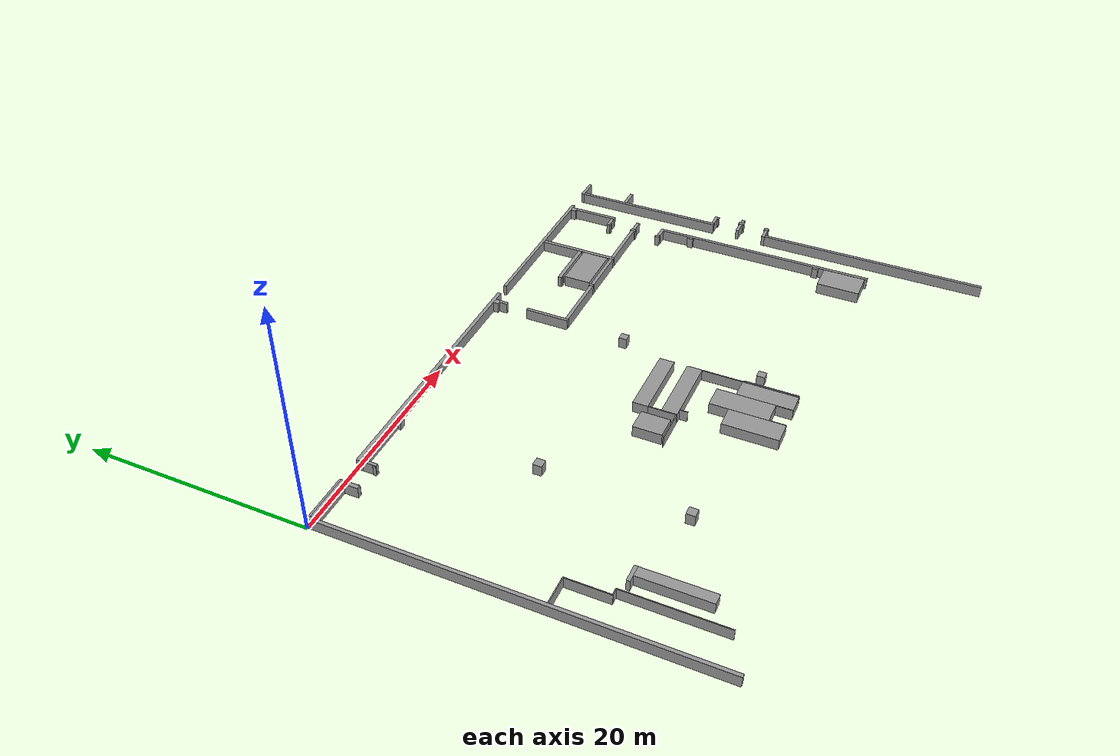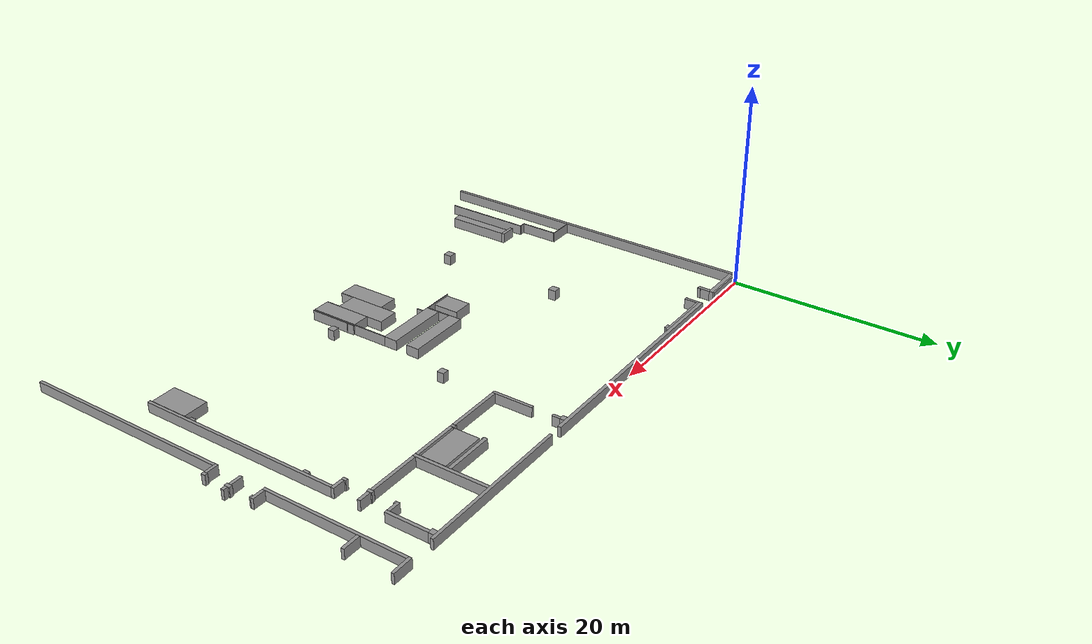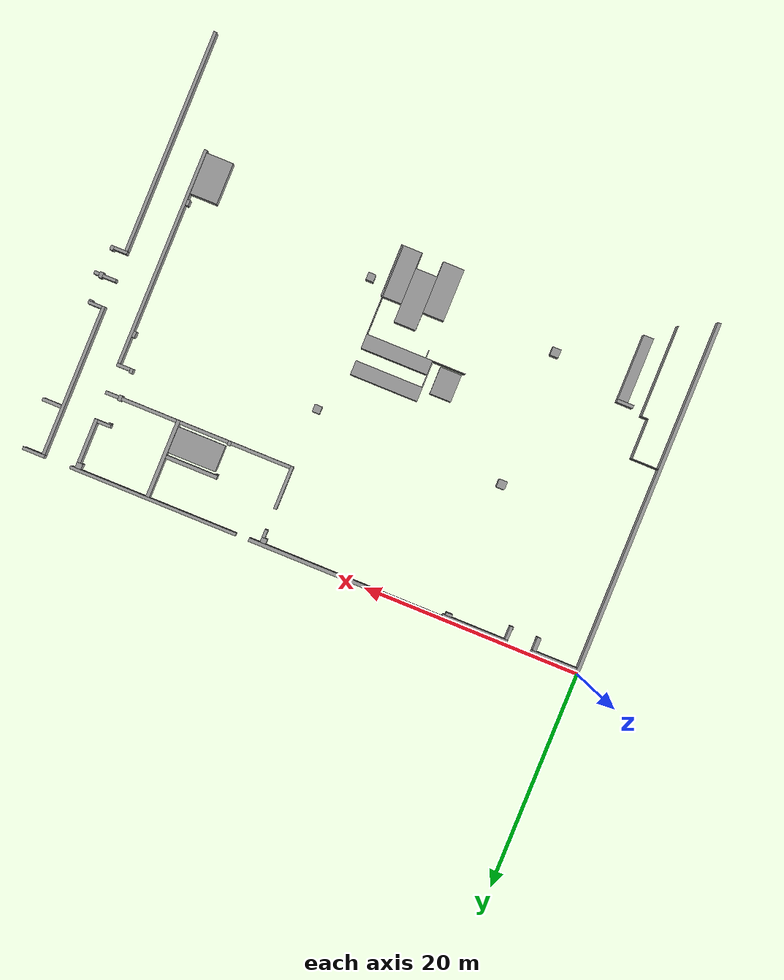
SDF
<sdf version="1.4">
 <model name="AdlerErfurtShopDownstairs">
  <static>1</static>
  <link name="Wall_0">
   <collision name="Wall_0_Collision">
    <geometry><box><size>4.51915 0.15319 1.00000</size></box></geometry>
    <pose>2.28511 -0.07660 0.50000 0 0 0.00000</pose>
   </collision>
   <visual name="Wall_0_Visual">
    <geometry><box><size>4.51915 0.15319 1.00000</size></box></geometry>
    <material>
     <script><uri>file://media/materials/scripts/gazebo.material</uri><name>Gazebo/Grey</name></script>
    </material>
    <pose>2.28511 -0.07660 0.50000 0 0 0.00000</pose>
   </visual>
  </link>
  <link name="Wall_1">
   <collision name="Wall_1_Collision">
    <geometry><box><size>24.07660 0.33191 1.00000</size></box></geometry>
    <pose>18.85532 -0.16596 0.50000 0 0 0.00000</pose>
   </collision>
   <visual name="Wall_1_Visual">
    <geometry><box><size>24.07660 0.33191 1.00000</size></box></geometry>
    <material>
     <script><uri>file://media/materials/scripts/gazebo.material</uri><name>Gazebo/Grey</name></script>
    </material>
    <pose>18.85532 -0.16596 0.50000 0 0 0.00000</pose>
   </visual>
  </link>
  <link name="Wall_2">
   <collision name="Wall_2_Collision">
    <geometry><box><size>15.49787 0.28085 1.00000</size></box></geometry>
    <pose>39.84255 -0.14043 0.50000 0 0 0.00000</pose>
   </collision>
   <visual name="Wall_2_Visual">
    <geometry><box><size>15.49787 0.28085 1.00000</size></box></geometry>
    <material>
     <script><uri>file://media/materials/scripts/gazebo.material</uri><name>Gazebo/Grey</name></script>
    </material>
    <pose>39.84255 -0.14043 0.50000 0 0 0.00000</pose>
   </visual>
  </link>
  <link name="Wall_3">
   <collision name="Wall_3_Collision">
    <geometry><box><size>2.01702 0.28085 1.00000</size></box></geometry>
    <pose>51.00000 -0.14043 0.50000 0 0 0.00000</pose>
   </collision>
   <visual name="Wall_3_Visual">
    <geometry><box><size>2.01702 0.28085 1.00000</size></box></geometry>
    <material>
     <script><uri>file://media/materials/scripts/gazebo.material</uri><name>Gazebo/Grey</name></script>
    </material>
    <pose>51.00000 -0.14043 0.50000 0 0 0.00000</pose>
   </visual>
  </link>
  <link name="Wall_4">
   <collision name="Wall_4_Collision">
    <geometry><box><size>0.30638 32.73191 1.00000</size></box></geometry>
    <pose>0.17872 -16.51915 0.50000 0 0 0.00000</pose>
   </collision>
   <visual name="Wall_4_Visual">
    <geometry><box><size>0.30638 32.73191 1.00000</size></box></geometry>
    <material>
     <script><uri>file://media/materials/scripts/gazebo.material</uri><name>Gazebo/Grey</name></script>
    </material>
    <pose>0.17872 -16.51915 0.50000 0 0 0.00000</pose>
   </visual>
  </link>
  <link name="Wall_5">
   <collision name="Wall_5_Collision">
    <geometry><box><size>4.18723 0.40851 1.00000</size></box></geometry>
    <pose>2.45106 -0.35745 0.50000 0 0 0.00000</pose>
   </collision>
   <visual name="Wall_5_Visual">
    <geometry><box><size>4.18723 0.40851 1.00000</size></box></geometry>
    <material>
     <script><uri>file://media/materials/scripts/gazebo.material</uri><name>Gazebo/Grey</name></script>
    </material>
    <pose>2.45106 -0.35745 0.50000 0 0 0.00000</pose>
   </visual>
  </link>
  <link name="Wall_6">
   <collision name="Wall_6_Collision">
    <geometry><box><size>0.02553 0.30638 1.00000</size></box></geometry>
    <pose>0.34468 -0.40851 0.50000 0 0 0.00000</pose>
   </collision>
   <visual name="Wall_6_Visual">
    <geometry><box><size>0.02553 0.30638 1.00000</size></box></geometry>
    <material>
     <script><uri>file://media/materials/scripts/gazebo.material</uri><name>Gazebo/Grey</name></script>
    </material>
    <pose>0.34468 -0.40851 0.50000 0 0 0.00000</pose>
   </visual>
  </link>
  <link name="Wall_7">
   <collision name="Wall_7_Collision">
    <geometry><box><size>0.33191 7.17447 1.00000</size></box></geometry>
    <pose>40.40426 -3.86809 0.50000 0 0 0.00000</pose>
   </collision>
   <visual name="Wall_7_Visual">
    <geometry><box><size>0.33191 7.17447 1.00000</size></box></geometry>
    <material>
     <script><uri>file://media/materials/scripts/gazebo.material</uri><name>Gazebo/Grey</name></script>
    </material>
    <pose>40.40426 -3.86809 0.50000 0 0 0.00000</pose>
   </visual>
  </link>
  <link name="Wall_8">
   <collision name="Wall_8_Collision">
    <geometry><box><size>0.53617 0.51064 1.00000</size></box></geometry>
    <pose>46.91489 -0.53617 0.50000 0 0 0.00000</pose>
   </collision>
   <visual name="Wall_8_Visual">
    <geometry><box><size>0.53617 0.51064 1.00000</size></box></geometry>
    <material>
     <script><uri>file://media/materials/scripts/gazebo.material</uri><name>Gazebo/Grey</name></script>
    </material>
    <pose>46.91489 -0.53617 0.50000 0 0 0.00000</pose>
   </visual>
  </link>
  <link name="Wall_9">
   <collision name="Wall_9_Collision">
    <geometry><box><size>0.28085 13.83830 1.00000</size></box></geometry>
    <pose>50.13191 -7.20000 0.50000 0 0 0.00000</pose>
   </collision>
   <visual name="Wall_9_Visual">
    <geometry><box><size>0.28085 13.83830 1.00000</size></box></geometry>
    <material>
     <script><uri>file://media/materials/scripts/gazebo.material</uri><name>Gazebo/Grey</name></script>
    </material>
    <pose>50.13191 -7.20000 0.50000 0 0 0.00000</pose>
   </visual>
  </link>
  <link name="Wall_10">
   <collision name="Wall_10_Collision">
    <geometry><box><size>6.07660 0.20426 1.00000</size></box></geometry>
    <pose>9.85532 -0.43404 0.50000 0 0 0.00000</pose>
   </collision>
   <visual name="Wall_10_Visual">
    <geometry><box><size>6.07660 0.20426 1.00000</size></box></geometry>
    <material>
     <script><uri>file://media/materials/scripts/gazebo.material</uri><name>Gazebo/Grey</name></script>
    </material>
    <pose>9.85532 -0.43404 0.50000 0 0 0.00000</pose>
   </visual>
  </link>
  <link name="Wall_11">
   <collision name="Wall_11_Collision">
    <geometry><box><size>0.53617 0.45957 1.00000</size></box></geometry>
    <pose>29.65532 -0.56170 0.50000 0 0 0.00000</pose>
   </collision>
   <visual name="Wall_11_Visual">
    <geometry><box><size>0.53617 0.45957 1.00000</size></box></geometry>
    <material>
     <script><uri>file://media/materials/scripts/gazebo.material</uri><name>Gazebo/Grey</name></script>
    </material>
    <pose>29.65532 -0.56170 0.50000 0 0 0.00000</pose>
   </visual>
  </link>
  <link name="Wall_12">
   <collision name="Wall_12_Collision">
    <geometry><box><size>0.28085 1.22553 1.00000</size></box></geometry>
    <pose>6.95745 -1.14894 0.50000 0 0 0.00000</pose>
   </collision>
   <visual name="Wall_12_Visual">
    <geometry><box><size>0.28085 1.22553 1.00000</size></box></geometry>
    <material>
     <script><uri>file://media/materials/scripts/gazebo.material</uri><name>Gazebo/Grey</name></script>
    </material>
    <pose>6.95745 -1.14894 0.50000 0 0 0.00000</pose>
   </visual>
  </link>
  <link name="Wall_13">
   <collision name="Wall_13_Collision">
    <geometry><box><size>0.58723 0.25532 1.00000</size></box></geometry>
    <pose>12.37021 -0.66383 0.50000 0 0 0.00000</pose>
   </collision>
   <visual name="Wall_13_Visual">
    <geometry><box><size>0.58723 0.25532 1.00000</size></box></geometry>
    <material>
     <script><uri>file://media/materials/scripts/gazebo.material</uri><name>Gazebo/Grey</name></script>
    </material>
    <pose>12.37021 -0.66383 0.50000 0 0 0.00000</pose>
   </visual>
  </link>
  <link name="Wall_14">
   <collision name="Wall_14_Collision">
    <geometry><box><size>0.35745 1.20000 1.00000</size></box></geometry>
    <pose>4.36596 -1.16170 0.50000 0 0 0.00000</pose>
   </collision>
   <visual name="Wall_14_Visual">
    <geometry><box><size>0.35745 1.20000 1.00000</size></box></geometry>
    <material>
     <script><uri>file://media/materials/scripts/gazebo.material</uri><name>Gazebo/Grey</name></script>
    </material>
    <pose>4.36596 -1.16170 0.50000 0 0 0.00000</pose>
   </visual>
  </link>
  <link name="Wall_15">
   <collision name="Wall_15_Collision">
    <geometry><box><size>0.28085 0.74043 1.00000</size></box></geometry>
    <pose>29.78298 -1.16170 0.50000 0 0 0.00000</pose>
   </collision>
   <visual name="Wall_15_Visual">
    <geometry><box><size>0.28085 0.74043 1.00000</size></box></geometry>
    <material>
     <script><uri>file://media/materials/scripts/gazebo.material</uri><name>Gazebo/Grey</name></script>
    </material>
    <pose>29.78298 -1.16170 0.50000 0 0 0.00000</pose>
   </visual>
  </link>
  <link name="Wall_16">
   <collision name="Wall_16_Collision">
    <geometry><box><size>0.30638 4.05957 1.00000</size></box></geometry>
    <pose>47.02979 -2.82128 0.50000 0 0 0.00000</pose>
   </collision>
   <visual name="Wall_16_Visual">
    <geometry><box><size>0.30638 4.05957 1.00000</size></box></geometry>
    <material>
     <script><uri>file://media/materials/scripts/gazebo.material</uri><name>Gazebo/Grey</name></script>
    </material>
    <pose>47.02979 -2.82128 0.50000 0 0 0.00000</pose>
   </visual>
  </link>
  <link name="Wall_17">
   <collision name="Wall_17_Collision">
    <geometry><box><size>0.02553 0.30638 1.00000</size></box></geometry>
    <pose>4.55745 -1.60851 0.50000 0 0 0.00000</pose>
   </collision>
   <visual name="Wall_17_Visual">
    <geometry><box><size>0.02553 0.30638 1.00000</size></box></geometry>
    <material>
     <script><uri>file://media/materials/scripts/gazebo.material</uri><name>Gazebo/Grey</name></script>
    </material>
    <pose>4.55745 -1.60851 0.50000 0 0 0.00000</pose>
   </visual>
  </link>
  <link name="Wall_18">
   <collision name="Wall_18_Collision">
    <geometry><box><size>0.05106 0.28085 1.00000</size></box></geometry>
    <pose>6.79149 -1.62128 0.50000 0 0 0.00000</pose>
   </collision>
   <visual name="Wall_18_Visual">
    <geometry><box><size>0.05106 0.28085 1.00000</size></box></geometry>
    <material>
     <script><uri>file://media/materials/scripts/gazebo.material</uri><name>Gazebo/Grey</name></script>
    </material>
    <pose>6.79149 -1.62128 0.50000 0 0 0.00000</pose>
   </visual>
  </link>
  <link name="Wall_19">
   <collision name="Wall_19_Collision">
    <geometry><box><size>0.28085 3.98298 1.00000</size></box></geometry>
    <pose>29.78298 -5.46383 0.50000 0 0 0.00000</pose>
   </collision>
   <visual name="Wall_19_Visual">
    <geometry><box><size>0.28085 3.98298 1.00000</size></box></geometry>
    <material>
     <script><uri>file://media/materials/scripts/gazebo.material</uri><name>Gazebo/Grey</name></script>
    </material>
    <pose>29.78298 -5.46383 0.50000 0 0 0.00000</pose>
   </visual>
  </link>
  <link name="Wall_20">
   <collision name="Wall_20_Collision">
    <geometry><box><size>4.77447 0.33191 1.00000</size></box></geometry>
    <pose>37.85106 -4.09787 0.50000 0 0 0.00000</pose>
   </collision>
   <visual name="Wall_20_Visual">
    <geometry><box><size>4.77447 0.33191 1.00000</size></box></geometry>
    <material>
     <script><uri>file://media/materials/scripts/gazebo.material</uri><name>Gazebo/Grey</name></script>
    </material>
    <pose>37.85106 -4.09787 0.50000 0 0 0.00000</pose>
   </visual>
  </link>
  <link name="Wall_21">
   <collision name="Wall_21_Collision">
    <geometry><box><size>0.28085 0.10213 1.00000</size></box></geometry>
    <pose>35.60426 -4.31489 0.50000 0 0 0.00000</pose>
   </collision>
   <visual name="Wall_21_Visual">
    <geometry><box><size>0.28085 0.10213 1.00000</size></box></geometry>
    <material>
     <script><uri>file://media/materials/scripts/gazebo.material</uri><name>Gazebo/Grey</name></script>
    </material>
    <pose>35.60426 -4.31489 0.50000 0 0 0.00000</pose>
   </visual>
  </link>
  <link name="Wall_22">
   <collision name="Wall_22_Collision">
    <geometry><box><size>4.41702 2.42553 1.00000</size></box></geometry>
    <pose>38.00426 -5.70638 0.50000 0 0 0.00000</pose>
   </collision>
   <visual name="Wall_22_Visual">
    <geometry><box><size>4.41702 2.42553 1.00000</size></box></geometry>
    <material>
     <script><uri>file://media/materials/scripts/gazebo.material</uri><name>Gazebo/Grey</name></script>
    </material>
    <pose>38.00426 -5.70638 0.50000 0 0 0.00000</pose>
   </visual>
  </link>
  <link name="Wall_23">
   <collision name="Wall_23_Collision">
    <geometry><box><size>1.73617 0.30638 1.00000</size></box></geometry>
    <pose>51.14043 -4.69787 0.50000 0 0 0.00000</pose>
   </collision>
   <visual name="Wall_23_Visual">
    <geometry><box><size>1.73617 0.30638 1.00000</size></box></geometry>
    <material>
     <script><uri>file://media/materials/scripts/gazebo.material</uri><name>Gazebo/Grey</name></script>
    </material>
    <pose>51.14043 -4.69787 0.50000 0 0 0.00000</pose>
   </visual>
  </link>
  <link name="Wall_24">
   <collision name="Wall_24_Collision">
    <geometry><box><size>1.20000 0.28085 1.00000</size></box></geometry>
    <pose>46.27660 -4.71064 0.50000 0 0 0.00000</pose>
   </collision>
   <visual name="Wall_24_Visual">
    <geometry><box><size>1.20000 0.28085 1.00000</size></box></geometry>
    <material>
     <script><uri>file://media/materials/scripts/gazebo.material</uri><name>Gazebo/Grey</name></script>
    </material>
    <pose>46.27660 -4.71064 0.50000 0 0 0.00000</pose>
   </visual>
  </link>
  <link name="Wall_25">
   <collision name="Wall_25_Collision">
    <geometry><box><size>0.28085 0.12766 1.00000</size></box></geometry>
    <pose>45.81702 -4.91489 0.50000 0 0 0.00000</pose>
   </collision>
   <visual name="Wall_25_Visual">
    <geometry><box><size>0.28085 0.12766 1.00000</size></box></geometry>
    <material>
     <script><uri>file://media/materials/scripts/gazebo.material</uri><name>Gazebo/Grey</name></script>
    </material>
    <pose>45.81702 -4.91489 0.50000 0 0 0.00000</pose>
   </visual>
  </link>
  <link name="Wall_26">
   <collision name="Wall_26_Collision">
    <geometry><box><size>0.30638 0.40851 1.00000</size></box></geometry>
    <pose>35.59149 -7.25106 0.50000 0 0 0.00000</pose>
   </collision>
   <visual name="Wall_26_Visual">
    <geometry><box><size>0.30638 0.40851 1.00000</size></box></geometry>
    <material>
     <script><uri>file://media/materials/scripts/gazebo.material</uri><name>Gazebo/Grey</name></script>
    </material>
    <pose>35.59149 -7.25106 0.50000 0 0 0.00000</pose>
   </visual>
  </link>
  <link name="Wall_27">
   <collision name="Wall_27_Collision">
    <geometry><box><size>0.30638 0.51064 1.00000</size></box></geometry>
    <pose>45.82979 -7.30213 0.50000 0 0 0.00000</pose>
   </collision>
   <visual name="Wall_27_Visual">
    <geometry><box><size>0.30638 0.51064 1.00000</size></box></geometry>
    <material>
     <script><uri>file://media/materials/scripts/gazebo.material</uri><name>Gazebo/Grey</name></script>
    </material>
    <pose>45.82979 -7.30213 0.50000 0 0 0.00000</pose>
   </visual>
  </link>
  <link name="Wall_28">
   <collision name="Wall_28_Collision">
    <geometry><box><size>5.51489 0.30638 1.00000</size></box></geometry>
    <pose>32.68085 -7.30213 0.50000 0 0 0.00000</pose>
   </collision>
   <visual name="Wall_28_Visual">
    <geometry><box><size>5.51489 0.30638 1.00000</size></box></geometry>
    <material>
     <script><uri>file://media/materials/scripts/gazebo.material</uri><name>Gazebo/Grey</name></script>
    </material>
    <pose>32.68085 -7.30213 0.50000 0 0 0.00000</pose>
   </visual>
  </link>
  <link name="Wall_29">
   <collision name="Wall_29_Collision">
    <geometry><box><size>4.49362 0.30638 1.00000</size></box></geometry>
    <pose>37.99149 -7.30213 0.50000 0 0 0.00000</pose>
   </collision>
   <visual name="Wall_29_Visual">
    <geometry><box><size>4.49362 0.30638 1.00000</size></box></geometry>
    <material>
     <script><uri>file://media/materials/scripts/gazebo.material</uri><name>Gazebo/Grey</name></script>
    </material>
    <pose>37.99149 -7.30213 0.50000 0 0 0.00000</pose>
   </visual>
  </link>
  <link name="Wall_30">
   <collision name="Wall_30_Collision">
    <geometry><box><size>5.10638 0.30638 1.00000</size></box></geometry>
    <pose>43.12340 -7.30213 0.50000 0 0 0.00000</pose>
   </collision>
   <visual name="Wall_30_Visual">
    <geometry><box><size>5.10638 0.30638 1.00000</size></box></geometry>
    <material>
     <script><uri>file://media/materials/scripts/gazebo.material</uri><name>Gazebo/Grey</name></script>
    </material>
    <pose>43.12340 -7.30213 0.50000 0 0 0.00000</pose>
   </visual>
  </link>
  <link name="Wall_31">
   <collision name="Wall_31_Collision">
    <geometry><box><size>1.20000 0.30638 1.00000</size></box></geometry>
    <pose>46.58298 -7.30213 0.50000 0 0 0.00000</pose>
   </collision>
   <visual name="Wall_31_Visual">
    <geometry><box><size>1.20000 0.30638 1.00000</size></box></geometry>
    <material>
     <script><uri>file://media/materials/scripts/gazebo.material</uri><name>Gazebo/Grey</name></script>
    </material>
    <pose>46.58298 -7.30213 0.50000 0 0 0.00000</pose>
   </visual>
  </link>
  <link name="Wall_32">
   <collision name="Wall_32_Collision">
    <geometry><box><size>0.28085 0.43404 1.00000</size></box></geometry>
    <pose>45.81702 -9.84255 0.50000 0 0 0.00000</pose>
   </collision>
   <visual name="Wall_32_Visual">
    <geometry><box><size>0.28085 0.43404 1.00000</size></box></geometry>
    <material>
     <script><uri>file://media/materials/scripts/gazebo.material</uri><name>Gazebo/Grey</name></script>
    </material>
    <pose>45.81702 -9.84255 0.50000 0 0 0.00000</pose>
   </visual>
  </link>
  <link name="Wall_33">
   <collision name="Wall_33_Collision">
    <geometry><box><size>1.22553 0.30638 1.00000</size></box></geometry>
    <pose>46.57021 -9.90638 0.50000 0 0 0.00000</pose>
   </collision>
   <visual name="Wall_33_Visual">
    <geometry><box><size>1.22553 0.30638 1.00000</size></box></geometry>
    <material>
     <script><uri>file://media/materials/scripts/gazebo.material</uri><name>Gazebo/Grey</name></script>
    </material>
    <pose>46.57021 -9.90638 0.50000 0 0 0.00000</pose>
   </visual>
  </link>
  <link name="Wall_34">
   <collision name="Wall_34_Collision">
    <geometry><box><size>0.28085 19.94043 1.00000</size></box></geometry>
    <pose>47.04255 -20.02979 0.50000 0 0 0.00000</pose>
   </collision>
   <visual name="Wall_34_Visual">
    <geometry><box><size>0.28085 19.94043 1.00000</size></box></geometry>
    <material>
     <script><uri>file://media/materials/scripts/gazebo.material</uri><name>Gazebo/Grey</name></script>
    </material>
    <pose>47.04255 -20.02979 0.50000 0 0 0.00000</pose>
   </visual>
  </link>
  <link name="Wall_35">
   <collision name="Wall_35_Collision">
    <geometry><box><size>0.76596 0.76596 1.00000</size></box></geometry>
    <pose>12.38298 -12.84255 0.50000 0 0 0.00000</pose>
   </collision>
   <visual name="Wall_35_Visual">
    <geometry><box><size>0.76596 0.76596 1.00000</size></box></geometry>
    <material>
     <script><uri>file://media/materials/scripts/gazebo.material</uri><name>Gazebo/Grey</name></script>
    </material>
    <pose>12.38298 -12.84255 0.50000 0 0 0.00000</pose>
   </visual>
  </link>
  <link name="Wall_36">
   <collision name="Wall_36_Collision">
    <geometry><box><size>0.68936 0.68936 1.00000</size></box></geometry>
    <pose>29.65532 -12.85532 0.50000 0 0 0.00000</pose>
   </collision>
   <visual name="Wall_36_Visual">
    <geometry><box><size>0.68936 0.68936 1.00000</size></box></geometry>
    <material>
     <script><uri>file://media/materials/scripts/gazebo.material</uri><name>Gazebo/Grey</name></script>
    </material>
    <pose>29.65532 -12.85532 0.50000 0 0 0.00000</pose>
   </visual>
  </link>
  <link name="Wall_37">
   <collision name="Wall_37_Collision">
    <geometry><box><size>0.25532 0.56170 1.00000</size></box></geometry>
    <pose>46.77447 -12.86809 0.50000 0 0 0.00000</pose>
   </collision>
   <visual name="Wall_37_Visual">
    <geometry><box><size>0.25532 0.56170 1.00000</size></box></geometry>
    <material>
     <script><uri>file://media/materials/scripts/gazebo.material</uri><name>Gazebo/Grey</name></script>
    </material>
    <pose>46.77447 -12.86809 0.50000 0 0 0.00000</pose>
   </visual>
  </link>
  <link name="Wall_38">
   <collision name="Wall_38_Collision">
    <geometry><box><size>1.25106 0.28085 1.00000</size></box></geometry>
    <pose>50.89787 -13.97872 0.50000 0 0 0.00000</pose>
   </collision>
   <visual name="Wall_38_Visual">
    <geometry><box><size>1.25106 0.28085 1.00000</size></box></geometry>
    <material>
     <script><uri>file://media/materials/scripts/gazebo.material</uri><name>Gazebo/Grey</name></script>
    </material>
    <pose>50.89787 -13.97872 0.50000 0 0 0.00000</pose>
   </visual>
  </link>
  <link name="Wall_39">
   <collision name="Wall_39_Collision">
    <geometry><box><size>0.33191 0.12766 1.00000</size></box></geometry>
    <pose>51.35745 -14.18298 0.50000 0 0 0.00000</pose>
   </collision>
   <visual name="Wall_39_Visual">
    <geometry><box><size>0.33191 0.12766 1.00000</size></box></geometry>
    <material>
     <script><uri>file://media/materials/scripts/gazebo.material</uri><name>Gazebo/Grey</name></script>
    </material>
    <pose>51.35745 -14.18298 0.50000 0 0 0.00000</pose>
   </visual>
  </link>
  <link name="Wall_40">
   <collision name="Wall_40_Collision">
    <geometry><box><size>0.33191 0.53617 1.00000</size></box></geometry>
    <pose>51.38298 -16.55745 0.50000 0 0 0.00000</pose>
   </collision>
   <visual name="Wall_40_Visual">
    <geometry><box><size>0.33191 0.53617 1.00000</size></box></geometry>
    <material>
     <script><uri>file://media/materials/scripts/gazebo.material</uri><name>Gazebo/Grey</name></script>
    </material>
    <pose>51.38298 -16.55745 0.50000 0 0 0.00000</pose>
   </visual>
  </link>
  <link name="Wall_41">
   <collision name="Wall_41_Collision">
    <geometry><box><size>1.22553 0.28085 1.00000</size></box></geometry>
    <pose>50.60426 -16.55745 0.50000 0 0 0.00000</pose>
   </collision>
   <visual name="Wall_41_Visual">
    <geometry><box><size>1.22553 0.28085 1.00000</size></box></geometry>
    <material>
     <script><uri>file://media/materials/scripts/gazebo.material</uri><name>Gazebo/Grey</name></script>
    </material>
    <pose>50.60426 -16.55745 0.50000 0 0 0.00000</pose>
   </visual>
  </link>
  <link name="Wall_42">
   <collision name="Wall_42_Collision">
    <geometry><box><size>0.45957 0.30638 1.00000</size></box></geometry>
    <pose>51.77872 -16.57021 0.50000 0 0 0.00000</pose>
   </collision>
   <visual name="Wall_42_Visual">
    <geometry><box><size>0.45957 0.30638 1.00000</size></box></geometry>
    <material>
     <script><uri>file://media/materials/scripts/gazebo.material</uri><name>Gazebo/Grey</name></script>
    </material>
    <pose>51.77872 -16.57021 0.50000 0 0 0.00000</pose>
   </visual>
  </link>
  <link name="Wall_43">
   <collision name="Wall_43_Collision">
    <geometry><box><size>6.22979 1.30213 1.00000</size></box></geometry>
    <pose>25.02128 -17.37447 0.50000 0 0 0.00000</pose>
   </collision>
   <visual name="Wall_43_Visual">
    <geometry><box><size>6.22979 1.30213 1.00000</size></box></geometry>
    <material>
     <script><uri>file://media/materials/scripts/gazebo.material</uri><name>Gazebo/Grey</name></script>
    </material>
    <pose>25.02128 -17.37447 0.50000 0 0 0.00000</pose>
   </visual>
  </link>
  <link name="Wall_44">
   <collision name="Wall_44_Collision">
    <geometry><box><size>1.96596 2.50213 1.00000</size></box></geometry>
    <pose>20.15745 -19.02128 0.50000 0 0 0.00000</pose>
   </collision>
   <visual name="Wall_44_Visual">
    <geometry><box><size>1.96596 2.50213 1.00000</size></box></geometry>
    <material>
     <script><uri>file://media/materials/scripts/gazebo.material</uri><name>Gazebo/Grey</name></script>
    </material>
    <pose>20.15745 -19.02128 0.50000 0 0 0.00000</pose>
   </visual>
  </link>
  <link name="Wall_45">
   <collision name="Wall_45_Collision">
    <geometry><box><size>0.07660 2.47660 1.00000</size></box></geometry>
    <pose>21.94468 -19.26383 0.50000 0 0 0.00000</pose>
   </collision>
   <visual name="Wall_45_Visual">
    <geometry><box><size>0.07660 2.47660 1.00000</size></box></geometry>
    <material>
     <script><uri>file://media/materials/scripts/gazebo.material</uri><name>Gazebo/Grey</name></script>
    </material>
    <pose>21.94468 -19.26383 0.50000 0 0 0.00000</pose>
   </visual>
  </link>
  <link name="Wall_46">
   <collision name="Wall_46_Collision">
    <geometry><box><size>0.30638 0.40851 1.00000</size></box></geometry>
    <pose>51.37021 -19.09787 0.50000 0 0 0.00000</pose>
   </collision>
   <visual name="Wall_46_Visual">
    <geometry><box><size>0.30638 0.40851 1.00000</size></box></geometry>
    <material>
     <script><uri>file://media/materials/scripts/gazebo.material</uri><name>Gazebo/Grey</name></script>
    </material>
    <pose>51.37021 -19.09787 0.50000 0 0 0.00000</pose>
   </visual>
  </link>
  <link name="Wall_47">
   <collision name="Wall_47_Collision">
    <geometry><box><size>1.22553 0.28085 1.00000</size></box></geometry>
    <pose>50.60426 -19.16170 0.50000 0 0 0.00000</pose>
   </collision>
   <visual name="Wall_47_Visual">
    <geometry><box><size>1.22553 0.28085 1.00000</size></box></geometry>
    <material>
     <script><uri>file://media/materials/scripts/gazebo.material</uri><name>Gazebo/Grey</name></script>
    </material>
    <pose>50.60426 -19.16170 0.50000 0 0 0.00000</pose>
   </visual>
  </link>
  <link name="Wall_48">
   <collision name="Wall_48_Collision">
    <geometry><box><size>2.50213 0.07660 1.00000</size></box></geometry>
    <pose>1.58298 -19.13617 0.50000 0 0 0.00000</pose>
   </collision>
   <visual name="Wall_48_Visual">
    <geometry><box><size>2.50213 0.07660 1.00000</size></box></geometry>
    <material>
     <script><uri>file://media/materials/scripts/gazebo.material</uri><name>Gazebo/Grey</name></script>
    </material>
    <pose>1.58298 -19.13617 0.50000 0 0 0.00000</pose>
   </visual>
  </link>
  <link name="Wall_49">
   <collision name="Wall_49_Collision">
    <geometry><box><size>0.07660 3.70213 1.00000</size></box></geometry>
    <pose>2.79574 -21.02553 0.50000 0 0 0.00000</pose>
   </collision>
   <visual name="Wall_49_Visual">
    <geometry><box><size>0.07660 3.70213 1.00000</size></box></geometry>
    <material>
     <script><uri>file://media/materials/scripts/gazebo.material</uri><name>Gazebo/Grey</name></script>
    </material>
    <pose>2.79574 -21.02553 0.50000 0 0 0.00000</pose>
   </visual>
  </link>
  <link name="Wall_50">
   <collision name="Wall_50_Collision">
    <geometry><box><size>6.15319 1.32766 1.00000</size></box></geometry>
    <pose>25.05957 -19.83830 0.50000 0 0 0.00000</pose>
   </collision>
   <visual name="Wall_50_Visual">
    <geometry><box><size>6.15319 1.32766 1.00000</size></box></geometry>
    <material>
     <script><uri>file://media/materials/scripts/gazebo.material</uri><name>Gazebo/Grey</name></script>
    </material>
    <pose>25.05957 -19.83830 0.50000 0 0 0.00000</pose>
   </visual>
  </link>
  <link name="Wall_51">
   <collision name="Wall_51_Collision">
    <geometry><box><size>0.28085 20.47660 1.00000</size></box></geometry>
    <pose>50.13191 -29.54043 0.50000 0 0 0.00000</pose>
   </collision>
   <visual name="Wall_51_Visual">
    <geometry><box><size>0.28085 20.47660 1.00000</size></box></geometry>
    <material>
     <script><uri>file://media/materials/scripts/gazebo.material</uri><name>Gazebo/Grey</name></script>
    </material>
    <pose>50.13191 -29.54043 0.50000 0 0 0.00000</pose>
   </visual>
  </link>
  <link name="Wall_52">
   <collision name="Wall_52_Collision">
    <geometry><box><size>2.98723 0.07660 1.00000</size></box></geometry>
    <pose>20.41277 -20.46383 0.50000 0 0 0.00000</pose>
   </collision>
   <visual name="Wall_52_Visual">
    <geometry><box><size>2.98723 0.07660 1.00000</size></box></geometry>
    <material>
     <script><uri>file://media/materials/scripts/gazebo.material</uri><name>Gazebo/Grey</name></script>
    </material>
    <pose>20.41277 -20.46383 0.50000 0 0 0.00000</pose>
   </visual>
  </link>
  <link name="Wall_53">
   <collision name="Wall_53_Collision">
    <geometry><box><size>0.07660 0.68936 1.00000</size></box></geometry>
    <pose>22.60851 -20.84681 0.50000 0 0 0.00000</pose>
   </collision>
   <visual name="Wall_53_Visual">
    <geometry><box><size>0.07660 0.68936 1.00000</size></box></geometry>
    <material>
     <script><uri>file://media/materials/scripts/gazebo.material</uri><name>Gazebo/Grey</name></script>
    </material>
    <pose>22.60851 -20.84681 0.50000 0 0 0.00000</pose>
   </visual>
  </link>
  <link name="Wall_54">
   <collision name="Wall_54_Collision">
    <geometry><box><size>0.07660 8.29787 1.00000</size></box></geometry>
    <pose>28.09787 -24.65106 0.50000 0 0 0.00000</pose>
   </collision>
   <visual name="Wall_54_Visual">
    <geometry><box><size>0.07660 8.29787 1.00000</size></box></geometry>
    <material>
     <script><uri>file://media/materials/scripts/gazebo.material</uri><name>Gazebo/Grey</name></script>
    </material>
    <pose>28.09787 -24.65106 0.50000 0 0 0.00000</pose>
   </visual>
  </link>
  <link name="Wall_55">
   <collision name="Wall_55_Collision">
    <geometry><box><size>2.01702 5.00426 1.00000</size></box></geometry>
    <pose>25.34043 -24.86809 0.50000 0 0 0.00000</pose>
   </collision>
   <visual name="Wall_55_Visual">
    <geometry><box><size>2.01702 5.00426 1.00000</size></box></geometry>
    <material>
     <script><uri>file://media/materials/scripts/gazebo.material</uri><name>Gazebo/Grey</name></script>
    </material>
    <pose>25.34043 -24.86809 0.50000 0 0 0.00000</pose>
   </visual>
  </link>
  <link name="Wall_56">
   <collision name="Wall_56_Collision">
    <geometry><box><size>0.61277 0.07660 1.00000</size></box></geometry>
    <pose>3.14043 -22.83830 0.50000 0 0 0.00000</pose>
   </collision>
   <visual name="Wall_56_Visual">
    <geometry><box><size>0.61277 0.07660 1.00000</size></box></geometry>
    <material>
     <script><uri>file://media/materials/scripts/gazebo.material</uri><name>Gazebo/Grey</name></script>
    </material>
    <pose>3.14043 -22.83830 0.50000 0 0 0.00000</pose>
   </visual>
  </link>
  <link name="Wall_57">
   <collision name="Wall_57_Collision">
    <geometry><box><size>0.07660 8.42553 1.00000</size></box></geometry>
    <pose>3.40851 -27.08936 0.50000 0 0 0.00000</pose>
   </collision>
   <visual name="Wall_57_Visual">
    <geometry><box><size>0.07660 8.42553 1.00000</size></box></geometry>
    <material>
     <script><uri>file://media/materials/scripts/gazebo.material</uri><name>Gazebo/Grey</name></script>
    </material>
    <pose>3.40851 -27.08936 0.50000 0 0 0.00000</pose>
   </visual>
  </link>
  <link name="Wall_58">
   <collision name="Wall_58_Collision">
    <geometry><box><size>1.50638 0.30638 1.00000</size></box></geometry>
    <pose>5.11915 -23.33617 0.50000 0 0 0.00000</pose>
   </collision>
   <visual name="Wall_58_Visual">
    <geometry><box><size>1.50638 0.30638 1.00000</size></box></geometry>
    <material>
     <script><uri>file://media/materials/scripts/gazebo.material</uri><name>Gazebo/Grey</name></script>
    </material>
    <pose>5.11915 -23.33617 0.50000 0 0 0.00000</pose>
   </visual>
  </link>
  <link name="Wall_59">
   <collision name="Wall_59_Collision">
    <geometry><box><size>0.91915 5.97447 1.00000</size></box></geometry>
    <pose>5.41277 -26.47660 0.50000 0 0 0.00000</pose>
   </collision>
   <visual name="Wall_59_Visual">
    <geometry><box><size>0.91915 5.97447 1.00000</size></box></geometry>
    <material>
     <script><uri>file://media/materials/scripts/gazebo.material</uri><name>Gazebo/Grey</name></script>
    </material>
    <pose>5.41277 -26.47660 0.50000 0 0 0.00000</pose>
   </visual>
  </link>
  <link name="Wall_60">
   <collision name="Wall_60_Collision">
    <geometry><box><size>1.94043 4.77447 1.00000</size></box></geometry>
    <pose>23.36170 -26.41277 0.50000 0 0 0.00000</pose>
   </collision>
   <visual name="Wall_60_Visual">
    <geometry><box><size>1.94043 4.77447 1.00000</size></box></geometry>
    <material>
     <script><uri>file://media/materials/scripts/gazebo.material</uri><name>Gazebo/Grey</name></script>
    </material>
    <pose>23.36170 -26.41277 0.50000 0 0 0.00000</pose>
   </visual>
  </link>
  <link name="Wall_61">
   <collision name="Wall_61_Collision">
    <geometry><box><size>1.71064 4.77447 1.00000</size></box></geometry>
    <pose>27.20426 -26.41277 0.50000 0 0 0.00000</pose>
   </collision>
   <visual name="Wall_61_Visual">
    <geometry><box><size>1.71064 4.77447 1.00000</size></box></geometry>
    <material>
     <script><uri>file://media/materials/scripts/gazebo.material</uri><name>Gazebo/Grey</name></script>
    </material>
    <pose>27.20426 -26.41277 0.50000 0 0 0.00000</pose>
   </visual>
  </link>
  <link name="Wall_62">
   <collision name="Wall_62_Collision">
    <geometry><box><size>0.12766 0.71489 1.00000</size></box></geometry>
    <pose>28.20000 -24.38298 0.50000 0 0 0.00000</pose>
   </collision>
   <visual name="Wall_62_Visual">
    <geometry><box><size>0.12766 0.71489 1.00000</size></box></geometry>
    <material>
     <script><uri>file://media/materials/scripts/gazebo.material</uri><name>Gazebo/Grey</name></script>
    </material>
    <pose>28.20000 -24.38298 0.50000 0 0 0.00000</pose>
   </visual>
  </link>
  <link name="Wall_63">
   <collision name="Wall_63_Collision">
    <geometry><box><size>0.10213 4.05957 1.00000</size></box></geometry>
    <pose>28.18723 -26.77021 0.50000 0 0 0.00000</pose>
   </collision>
   <visual name="Wall_63_Visual">
    <geometry><box><size>0.10213 4.05957 1.00000</size></box></geometry>
    <material>
     <script><uri>file://media/materials/scripts/gazebo.material</uri><name>Gazebo/Grey</name></script>
    </material>
    <pose>28.18723 -26.77021 0.50000 0 0 0.00000</pose>
   </visual>
  </link>
  <link name="Wall_64">
   <collision name="Wall_64_Collision">
    <geometry><box><size>0.76596 0.76596 1.00000</size></box></geometry>
    <pose>12.38298 -25.17447 0.50000 0 0 0.00000</pose>
   </collision>
   <visual name="Wall_64_Visual">
    <geometry><box><size>0.76596 0.76596 1.00000</size></box></geometry>
    <material>
     <script><uri>file://media/materials/scripts/gazebo.material</uri><name>Gazebo/Grey</name></script>
    </material>
    <pose>12.38298 -25.17447 0.50000 0 0 0.00000</pose>
   </visual>
  </link>
  <link name="Wall_65">
   <collision name="Wall_65_Collision">
    <geometry><box><size>0.02553 4.00851 1.00000</size></box></geometry>
    <pose>28.25106 -26.79574 0.50000 0 0 0.00000</pose>
   </collision>
   <visual name="Wall_65_Visual">
    <geometry><box><size>0.02553 4.00851 1.00000</size></box></geometry>
    <material>
     <script><uri>file://media/materials/scripts/gazebo.material</uri><name>Gazebo/Grey</name></script>
    </material>
    <pose>28.25106 -26.79574 0.50000 0 0 0.00000</pose>
   </visual>
  </link>
  <link name="Wall_66">
   <collision name="Wall_66_Collision">
    <geometry><box><size>0.68936 0.68936 1.00000</size></box></geometry>
    <pose>29.65532 -25.18723 0.50000 0 0 0.00000</pose>
   </collision>
   <visual name="Wall_66_Visual">
    <geometry><box><size>0.68936 0.68936 1.00000</size></box></geometry>
    <material>
     <script><uri>file://media/materials/scripts/gazebo.material</uri><name>Gazebo/Grey</name></script>
    </material>
    <pose>29.65532 -25.18723 0.50000 0 0 0.00000</pose>
   </visual>
  </link>
  <link name="Wall_67">
   <collision name="Wall_67_Collision">
    <geometry><box><size>0.25532 0.53617 1.00000</size></box></geometry>
    <pose>46.77447 -25.18723 0.50000 0 0 0.00000</pose>
   </collision>
   <visual name="Wall_67_Visual">
    <geometry><box><size>0.25532 0.53617 1.00000</size></box></geometry>
    <material>
     <script><uri>file://media/materials/scripts/gazebo.material</uri><name>Gazebo/Grey</name></script>
    </material>
    <pose>46.77447 -25.18723 0.50000 0 0 0.00000</pose>
   </visual>
  </link>
  <link name="Wall_68">
   <collision name="Wall_68_Collision">
    <geometry><box><size>0.02553 4.54468 1.00000</size></box></geometry>
    <pose>46.88936 -27.72766 0.50000 0 0 0.00000</pose>
   </collision>
   <visual name="Wall_68_Visual">
    <geometry><box><size>0.02553 4.54468 1.00000</size></box></geometry>
    <material>
     <script><uri>file://media/materials/scripts/gazebo.material</uri><name>Gazebo/Grey</name></script>
    </material>
    <pose>46.88936 -27.72766 0.50000 0 0 0.00000</pose>
   </visual>
  </link>
  <link name="Wall_69">
   <collision name="Wall_69_Collision">
    <geometry><box><size>2.47660 3.80426 1.00000</size></box></geometry>
    <pose>45.63830 -27.89362 0.50000 0 0 0.00000</pose>
   </collision>
   <visual name="Wall_69_Visual">
    <geometry><box><size>2.47660 3.80426 1.00000</size></box></geometry>
    <material>
     <script><uri>file://media/materials/scripts/gazebo.material</uri><name>Gazebo/Grey</name></script>
    </material>
    <pose>45.63830 -27.89362 0.50000 0 0 0.00000</pose>
   </visual>
  </link>
  <link name="Wall_70">
   <collision name="Wall_70_Collision">
    <geometry><box><size>0.05106 1.42979 1.00000</size></box></geometry>
    <pose>24.35745 -28.08511 0.50000 0 0 0.00000</pose>
   </collision>
   <visual name="Wall_70_Visual">
    <geometry><box><size>0.05106 1.42979 1.00000</size></box></geometry>
    <material>
     <script><uri>file://media/materials/scripts/gazebo.material</uri><name>Gazebo/Grey</name></script>
    </material>
    <pose>24.35745 -28.08511 0.50000 0 0 0.00000</pose>
   </visual>
  </link>
  <link name="Wall_71">
   <collision name="Wall_71_Collision">
    <geometry><box><size>0.05106 1.42979 1.00000</size></box></geometry>
    <pose>26.32340 -28.08511 0.50000 0 0 0.00000</pose>
   </collision>
   <visual name="Wall_71_Visual">
    <geometry><box><size>0.05106 1.42979 1.00000</size></box></geometry>
    <material>
     <script><uri>file://media/materials/scripts/gazebo.material</uri><name>Gazebo/Grey</name></script>
    </material>
    <pose>26.32340 -28.08511 0.50000 0 0 0.00000</pose>
   </visual>
  </link>
 </model>
</sdf>
